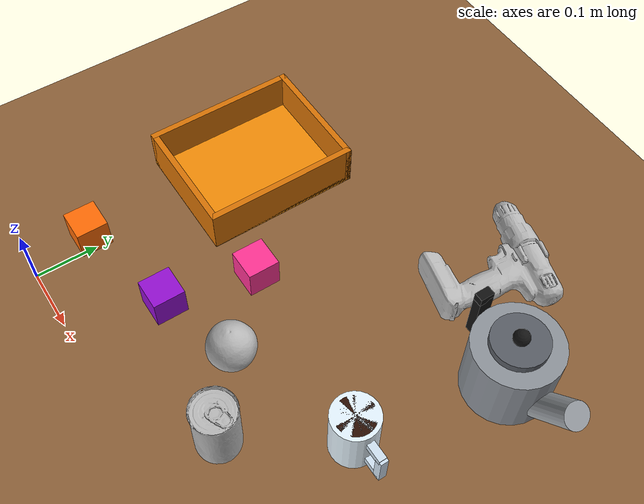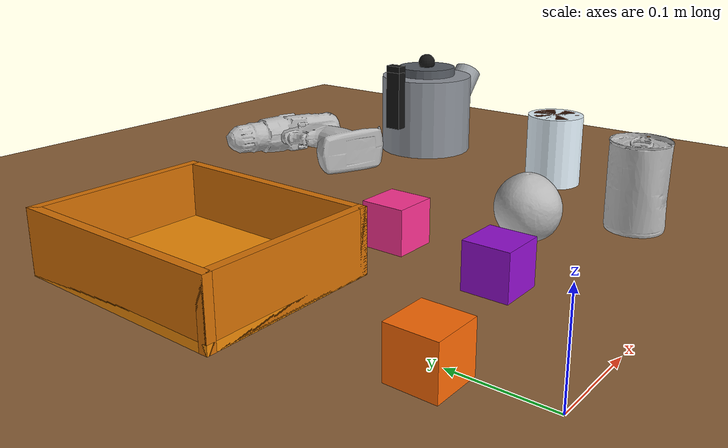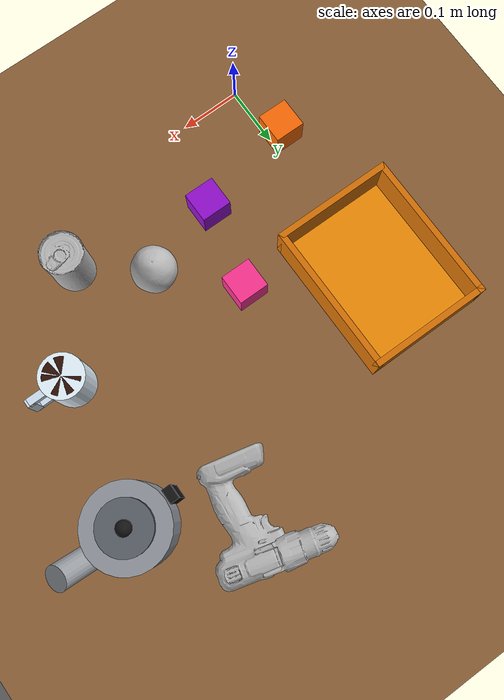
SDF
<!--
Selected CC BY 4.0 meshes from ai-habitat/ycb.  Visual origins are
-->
<sdf version="1.7">
 <world name="ur3_pick_place">
  <model name="ground_plane">
   <static>true</static>
   <pose>0 0 -0.081 0 0 0</pose>
   <link name="link">
    <collision name="collision">
     <geometry><plane><normal>0 0 1</normal><size>10 10</size></plane></geometry>
    </collision>
    <visual name="visual">
     <geometry><plane><normal>0 0 1</normal><size>10 10</size></plane></geometry>
     <material><ambient>0.25 0.25 0.25 1</ambient><diffuse>0.35 0.35 0.35 1</diffuse></material>
    </visual>
   </link>
   <plugin filename="ignition-gazebo-label-system" name="ignition::gazebo::systems::Label">
    <label>41</label>
   </plugin>
  </model>
  <model name="work_table">
   <static>true</static>
   <pose>0 0.45 -0.04 0 0 0</pose>
   <link name="table_link">
    <collision name="collision"><geometry><box><size>1.6 2.2 0.08</size></box></geometry></collision>
    <visual name="visual">
     <geometry><box><size>1.6 2.2 0.08</size></box></geometry>
     <material><ambient>0.45 0.30 0.18 1</ambient><diffuse>0.55 0.38 0.22 1</diffuse></material>
    </visual>
   </link>
   <plugin filename="ignition-gazebo-label-system" name="ignition::gazebo::systems::Label">
    <label>40</label>
   </plugin>
  </model>
  <model name="top_table_camera">
   <static>true</static>
   <pose>0 0.45 1.80 0 1.57079632679 0</pose>
   <link name="top_table_camera_link">
    <sensor name="top_table_rgbd" type="rgbd_camera">
     <camera>
      <horizontal_fov>1.10</horizontal_fov>
      <image><width>640</width><height>480</height><format>R8G8B8</format></image>
      <clip><near>0.10</near><far>3.0</far></clip>
      <depth_camera><clip><near>0.10</near><far>3.0</far></clip></depth_camera>
      <optical_frame_id>top_table_camera_optical_frame</optical_frame_id>
     </camera>
     <always_on>true</always_on>
     <update_rate>30</update_rate>
     <visualize>true</visualize>
     <topic>/top_table_camera</topic>
     <gz_frame_id>top_table_camera_optical_frame</gz_frame_id>
    </sensor>
   </link>
  </model>
  <model name="orange_cube">
   <pose>-0.02 0.10 0.025 0 0 0</pose>
   <link name="cube_link">
    <inertial>
     <mass>0.06</mass>
     <inertia><ixx>0.000025</ixx><iyy>0.000025</iyy><izz>0.000025</izz></inertia>
    </inertial>
    <collision name="collision"><geometry><box><size>0.05 0.05 0.05</size></box></geometry></collision>
    <visual name="visual">
     <geometry><box><size>0.05 0.05 0.05</size></box></geometry>
     <material><ambient>0.88 0.28 0.01 1</ambient><diffuse>1.00 0.42 0.02 1</diffuse></material>
    </visual>
   </link>
   <plugin filename="ignition-gazebo-label-system" name="ignition::gazebo::systems::Label">
    <label>5</label>
   </plugin>
  </model>
  <model name="purple_cube">
   <pose>0.15 0.14 0.025 0 0 0</pose>
   <link name="cube_link">
    <inertial>
     <mass>0.06</mass>
     <inertia><ixx>0.000025</ixx><iyy>0.000025</iyy><izz>0.000025</izz></inertia>
    </inertial>
    <collision name="collision"><geometry><box><size>0.05 0.05 0.05</size></box></geometry></collision>
    <visual name="visual">
     <geometry><box><size>0.05 0.05 0.05</size></box></geometry>
     <material><ambient>0.42 0.03 0.62 1</ambient><diffuse>0.58 0.06 0.82 1</diffuse></material>
    </visual>
   </link>
   <plugin filename="ignition-gazebo-label-system" name="ignition::gazebo::systems::Label">
    <label>6</label>
   </plugin>
  </model>
  <model name="pink_cube">
   <pose>0.18 0.28 0.025 0 0 0</pose>
   <link name="cube_link">
    <inertial>
     <mass>0.06</mass>
     <inertia><ixx>0.000025</ixx><iyy>0.000025</iyy><izz>0.000025</izz></inertia>
    </inertial>
    <collision name="collision"><geometry><box><size>0.05 0.05 0.05</size></box></geometry></collision>
    <visual name="visual">
     <geometry><box><size>0.05 0.05 0.05</size></box></geometry>
     <material><ambient>0.88 0.10 0.42 1</ambient><diffuse>1.00 0.20 0.58 1</diffuse></material>
    </visual>
   </link>
   <plugin filename="ignition-gazebo-label-system" name="ignition::gazebo::systems::Label">
    <label>7</label>
   </plugin>
  </model>
  <model name="ycb_tomato_soup_can">
   <pose>0.38 0.10 0.050948 0 0 0</pose>
   <link name="object_link">
    <inertial>
     <mass>0.12</mass>
     <inertia><ixx>0.00013</ixx><iyy>0.00013</iyy><izz>0.00014</izz></inertia>
    </inertial>
    <collision name="collision">
     <geometry><cylinder><radius>0.03395</radius><length>0.101895</length></cylinder></geometry>
     <surface><friction><ode><mu>1.1</mu><mu2>1.1</mu2></ode></friction></surface>
    </collision>
    <visual name="ycb_visual">
     <pose>0.009150 -0.084021 -0.050990 0 0 0</pose>
     <geometry><mesh><uri>../models/ycb/005_tomato_soup_can/005_tomato_soup_can.obj</uri></mesh></geometry>
    </visual>
   </link>
   <plugin filename="ignition-gazebo-pose-publisher-system" name="gz::sim::systems::PosePublisher">
    <publish_link_pose>false</publish_link_pose>
    <publish_collision_pose>false</publish_collision_pose>
    <publish_visual_pose>false</publish_visual_pose>
    <publish_nested_model_pose>false</publish_nested_model_pose>
    <use_pose_vector_msg>true</use_pose_vector_msg>
    <static_publisher>false</static_publisher>
    <update_frequency>15</update_frequency>
   </plugin>
   <plugin filename="ignition-gazebo-label-system" name="ignition::gazebo::systems::Label">
    <label>23</label>
   </plugin>
  </model>
  <model name="ycb_orange">
   <pose>0.28 0.18 0.037010 0 0 0</pose>
   <link name="object_link">
    <inertial>
     <mass>0.13</mass>
     <inertia><ixx>0.00007</ixx><iyy>0.00007</iyy><izz>0.00007</izz></inertia>
    </inertial>
    <velocity_decay><linear>0.25</linear><angular>0.80</angular></velocity_decay>
    <collision name="collision">
     <geometry><sphere><radius>0.03701</radius></sphere></geometry>
     <surface><friction><ode><mu>1.5</mu><mu2>1.5</mu2></ode></friction></surface>
    </collision>
    <visual name="ycb_visual">
     <pose>0.006944 0.018358 -0.035408 0 0 0</pose>
     <geometry><mesh><uri>../models/ycb/017_orange/017_orange.obj</uri></mesh></geometry>
    </visual>
   </link>
   <plugin filename="ignition-gazebo-pose-publisher-system" name="gz::sim::systems::PosePublisher">
    <publish_link_pose>false</publish_link_pose>
    <publish_collision_pose>false</publish_collision_pose>
    <publish_visual_pose>false</publish_visual_pose>
    <publish_nested_model_pose>false</publish_nested_model_pose>
    <use_pose_vector_msg>true</use_pose_vector_msg>
    <static_publisher>false</static_publisher>
    <update_frequency>15</update_frequency>
   </plugin>
   <plugin filename="ignition-gazebo-label-system" name="ignition::gazebo::systems::Label">
    <label>27</label>
   </plugin>
  </model>
  <model name="ycb_power_drill">
   <pose>0.36 0.57 0.028689 0 0 -0.25</pose>
   <link name="object_link">
    <inertial>
     <mass>0.45</mass>
     <inertia><ixx>0.00137</ixx><iyy>0.00139</iyy><izz>0.00258</izz></inertia>
    </inertial>
    <collision name="collision">
     <geometry><box><size>0.183995 0.187244 0.057377</size></box></geometry>
     <surface><friction><ode><mu>1.1</mu><mu2>1.1</mu2></ode></friction></surface>
    </collision>
    <visual name="ycb_visual">
     <pose>0.045866 -0.010493 -0.025266 0 0 0</pose>
     <geometry><mesh><uri>../models/ycb/035_power_drill/035_power_drill.obj</uri></mesh></geometry>
    </visual>
   </link>
   <plugin filename="ignition-gazebo-pose-publisher-system" name="gz::sim::systems::PosePublisher">
    <publish_link_pose>false</publish_link_pose>
    <publish_collision_pose>false</publish_collision_pose>
    <publish_visual_pose>false</publish_visual_pose>
    <publish_nested_model_pose>false</publish_nested_model_pose>
    <use_pose_vector_msg>true</use_pose_vector_msg>
    <static_publisher>false</static_publisher>
    <update_frequency>15</update_frequency>
   </plugin>
   <plugin filename="ignition-gazebo-label-system" name="ignition::gazebo::systems::Label">
    <label>28</label>
   </plugin>
  </model>
  <model name="cup">
   <static>true</static>
   <pose>0.48 0.25 0.045 0 0 0</pose>
   <link name="cup_link">
    <collision name="cup_collision">
     <geometry><cylinder><radius>0.035</radius><length>0.090</length></cylinder></geometry>
    </collision>
    <visual name="ceramic_body">
     <geometry><cylinder><radius>0.035</radius><length>0.090</length></cylinder></geometry>
     <material>
      <ambient>0.80 0.87 0.92 1</ambient>
      <diffuse>0.90 0.96 1.0 1</diffuse>
      <specular>0.35 0.35 0.35 1</specular>
     </material>
    </visual>
    <visual name="coffee">
     <pose>0 0 0.043 0 0 0</pose>
     <geometry><cylinder><radius>0.029</radius><length>0.004</length></cylinder></geometry>
     <material><ambient>0.10 0.035 0.01 1</ambient><diffuse>0.18 0.06 0.015 1</diffuse></material>
    </visual>
    <visual name="handle_upper">
     <pose>0.047 0 0.022 0 0 0</pose>
     <geometry><box><size>0.030 0.012 0.012</size></box></geometry>
     <material><ambient>0.82 0.89 0.95 1</ambient></material>
    </visual>
    <visual name="handle_lower">
     <pose>0.047 0 -0.022 0 0 0</pose>
     <geometry><box><size>0.030 0.012 0.012</size></box></geometry>
     <material><ambient>0.82 0.89 0.95 1</ambient></material>
    </visual>
    <visual name="handle_side">
     <pose>0.060 0 0 0 0 0</pose>
     <geometry><box><size>0.012 0.012 0.052</size></box></geometry>
     <material><ambient>0.82 0.89 0.95 1</ambient></material>
    </visual>
   </link>
   <plugin filename="ignition-gazebo-label-system" name="ignition::gazebo::systems::Label">
    <label>30</label>
   </plugin>
  </model>
  <model name="kettle">
   <static>true</static>
   <pose>0.52 0.48 0.055 0 0 0</pose>
   <link name="kettle_link">
    <collision name="body_collision">
     <geometry><cylinder><radius>0.065</radius><length>0.110</length></cylinder></geometry>
    </collision>
    <visual name="steel_body">
     <geometry><cylinder><radius>0.065</radius><length>0.110</length></cylinder></geometry>
     <material>
      <ambient>0.34 0.36 0.38 1</ambient>
      <diffuse>0.56 0.58 0.61 1</diffuse>
      <specular>0.75 0.75 0.75 1</specular>
     </material>
    </visual>
    <visual name="lid">
     <pose>0 0 0.062 0 0 0</pose>
     <geometry><cylinder><radius>0.041</radius><length>0.012</length></cylinder></geometry>
     <material><ambient>0.18 0.20 0.22 1</ambient><diffuse>0.35 0.37 0.40 1</diffuse></material>
    </visual>
    <visual name="lid_knob">
     <pose>0 0 0.074 0 0 0</pose>
     <geometry><sphere><radius>0.012</radius></sphere></geometry>
     <material><ambient>0.04 0.04 0.04 1</ambient><diffuse>0.08 0.08 0.08 1</diffuse></material>
    </visual>
    <visual name="spout">
     <pose>0.085 0 0.012 0 0.72 0</pose>
     <geometry><cylinder><radius>0.020</radius><length>0.090</length></cylinder></geometry>
     <material><ambient>0.38 0.40 0.42 1</ambient><diffuse>0.62 0.64 0.66 1</diffuse></material>
    </visual>
    <visual name="handle_left">
     <pose>-0.076 0 0.030 0 0 0</pose>
     <geometry><box><size>0.014 0.022 0.080</size></box></geometry>
     <material><ambient>0.03 0.03 0.03 1</ambient><diffuse>0.07 0.07 0.07 1</diffuse></material>
    </visual>
    <visual name="handle_top">
     <pose>-0.076 0 0.072 0 0 0</pose>
     <geometry><box><size>0.014 0.022 0.014</size></box></geometry>
     <material><ambient>0.03 0.03 0.03 1</ambient><diffuse>0.07 0.07 0.07 1</diffuse></material>
    </visual>
   </link>
   <plugin filename="ignition-gazebo-label-system" name="ignition::gazebo::systems::Label">
    <label>31</label>
   </plugin>
  </model>
  <model name="target_bin">
   <static>true</static>
   <pose>0 0.38 0 0 0 0</pose>
   <link name="bin_link">
    <collision name="floor_collision">
     <pose>0 0 0.005 0 0 0</pose>
     <geometry><box><size>0.20 0.25 0.01</size></box></geometry>
    </collision>
    <visual name="floor_visual">
     <pose>0 0 0.005 0 0 0</pose>
     <geometry><box><size>0.20 0.25 0.01</size></box></geometry>
     <material><ambient>0.85 0.45 0.02 1</ambient><diffuse>0.95 0.55 0.03 1</diffuse></material>
    </visual>
    <collision name="front_collision">
     <pose>0.095 0 0.035 0 0 0</pose>
     <geometry><box><size>0.01 0.25 0.07</size></box></geometry>
    </collision>
    <visual name="front_visual">
     <pose>0.095 0 0.035 0 0 0</pose>
     <geometry><box><size>0.01 0.25 0.07</size></box></geometry>
     <material><ambient>0.85 0.45 0.02 1</ambient></material>
    </visual>
    <collision name="back_collision">
     <pose>-0.095 0 0.035 0 0 0</pose>
     <geometry><box><size>0.01 0.25 0.07</size></box></geometry>
    </collision>
    <visual name="back_visual">
     <pose>-0.095 0 0.035 0 0 0</pose>
     <geometry><box><size>0.01 0.25 0.07</size></box></geometry>
     <material><ambient>0.85 0.45 0.02 1</ambient></material>
    </visual>
    <collision name="left_collision">
     <pose>0 0.12 0.035 0 0 0</pose>
     <geometry><box><size>0.20 0.01 0.07</size></box></geometry>
    </collision>
    <visual name="left_visual">
     <pose>0 0.12 0.035 0 0 0</pose>
     <geometry><box><size>0.20 0.01 0.07</size></box></geometry>
     <material><ambient>0.85 0.45 0.02 1</ambient></material>
    </visual>
    <collision name="right_collision">
     <pose>0 -0.12 0.035 0 0 0</pose>
     <geometry><box><size>0.20 0.01 0.07</size></box></geometry>
    </collision>
    <visual name="right_visual">
     <pose>0 -0.12 0.035 0 0 0</pose>
     <geometry><box><size>0.20 0.01 0.07</size></box></geometry>
     <material><ambient>0.85 0.45 0.02 1</ambient></material>
    </visual>
   </link>
   <plugin filename="ignition-gazebo-label-system" name="ignition::gazebo::systems::Label">
    <label>32</label>
   </plugin>
  </model>
 </world>
</sdf>
